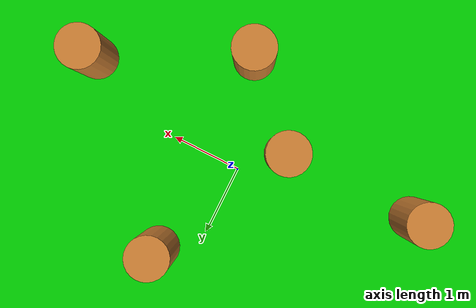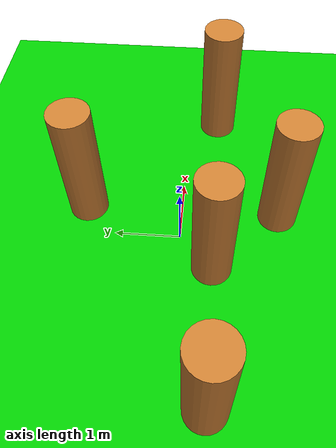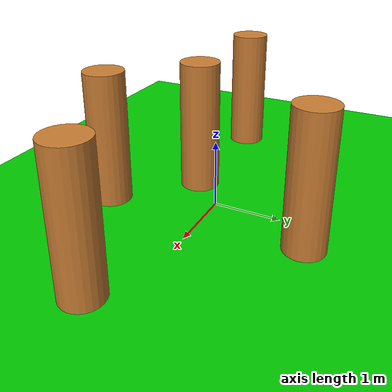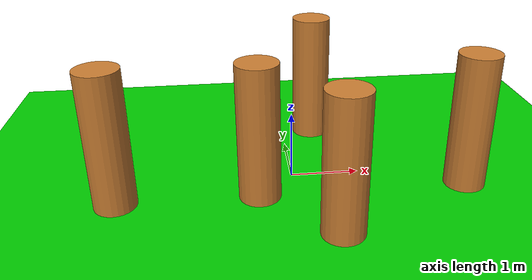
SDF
<sdf version="1.6">
 <world name="dorm">
  <plugin filename="ignition-gazebo-physics-system" name="ignition::gazebo::systems::Physics"/>
  <plugin filename="ignition-gazebo-user-commands-system" name="ignition::gazebo::systems::UserCommands"/>
  <plugin filename="ignition-gazebo-scene-broadcaster-system" name="ignition::gazebo::systems::SceneBroadcaster"/>
  <light name="sun" type="directional">
   <pose>0 0 10 0 -0 0</pose>
   <diffuse>0.8 0.8 0.8 1</diffuse>
   <specular>0.2 0.2 0.2 1</specular>
   <attenuation>
    <range>1000</range>
    <constant>0.9</constant>
    <linear>0.01</linear>
    <quadratic>0.001</quadratic>
   </attenuation>
   <direction>-0.5 0.1 -0.9</direction>
  </light>
  <model name="ground_plane">
   <static>true</static>
   <link name="link">
    <collision name="collision">
     <geometry><plane><normal>0 0 1</normal><size>6 8</size></plane></geometry>
    </collision>
    <visual name="visual">
     <geometry><plane><normal>0 0 1</normal><size>6 8</size></plane></geometry>
     <material>
      <ambient>0.8 0.8 0.8 1</ambient>
      <diffuse>0 0.8 0 1</diffuse>
      <specular>0.8 0.8 0.8 1</specular>
     </material>
    </visual>
   </link>
  </model>
  <model name="pillar1">
   <pose>-2.5 -0.5 1 0 0 0</pose>
   <static>true</static>
   <link name="cylinder_link">
    <inertial>
     <inertia><ixx>0.1458</ixx><ixy>0</ixy><ixz>0</ixz><iyy>0.1458</iyy><iyz>0</iyz><izz>0.125</izz></inertia>
     <mass>1.0</mass>
    </inertial>
    <collision name="cylinder_collision">
     <geometry><cylinder><radius>0.3</radius><length>2.0</length></cylinder></geometry>
    </collision>
    <visual name="cylinder_visual">
     <geometry><cylinder><radius>0.3</radius><length>2.0</length></cylinder></geometry>
     <material><ambient>0 1 0 1</ambient><diffuse>0.8 0.5 0.2 1</diffuse><specular>0 1 0 1</specular></material>
    </visual>
   </link>
  </model>
  <model name="pillar2">
   <pose>-0.5 -0.5 1 0 0 0</pose>
   <static>true</static>
   <link name="cylinder_link">
    <inertial>
     <inertia><ixx>0.1458</ixx><ixy>0</ixy><ixz>0</ixz><iyy>0.1458</iyy><iyz>0</iyz><izz>0.125</izz></inertia>
     <mass>1.0</mass>
    </inertial>
    <collision name="cylinder_collision">
     <geometry><cylinder><radius>0.3</radius><length>2.0</length></cylinder></geometry>
    </collision>
    <visual name="cylinder_visual">
     <geometry><cylinder><radius>0.3</radius><length>2.0</length></cylinder></geometry>
     <material><ambient>0 1 0 1</ambient><diffuse>0.8 0.5 0.2 1</diffuse><specular>0 1 0 1</specular></material>
    </visual>
   </link>
  </model>
  <model name="pillar3">
   <pose>0.5 1.5 1 0 0 0</pose>
   <static>true</static>
   <link name="cylinder_link">
    <inertial>
     <inertia><ixx>0.1458</ixx><ixy>0</ixy><ixz>0</ixz><iyy>0.1458</iyy><iyz>0</iyz><izz>0.125</izz></inertia>
     <mass>1.0</mass>
    </inertial>
    <collision name="cylinder_collision">
     <geometry><cylinder><radius>0.3</radius><length>2.0</length></cylinder></geometry>
    </collision>
    <visual name="cylinder_visual">
     <geometry><cylinder><radius>0.3</radius><length>2.0</length></cylinder></geometry>
     <material><ambient>0 1 0 1</ambient><diffuse>0.8 0.5 0.2 1</diffuse><specular>0 1 0 1</specular></material>
    </visual>
   </link>
  </model>
  <model name="pillar4">
   <pose>0.5 -1.5 1 0 0 0</pose>
   <static>true</static>
   <link name="cylinder_link">
    <inertial>
     <inertia><ixx>0.1458</ixx><ixy>0</ixy><ixz>0</ixz><iyy>0.1458</iyy><iyz>0</iyz><izz>0.125</izz></inertia>
     <mass>1.0</mass>
    </inertial>
    <collision name="cylinder_collision">
     <geometry><cylinder><radius>0.3</radius><length>2.0</length></cylinder></geometry>
    </collision>
    <visual name="cylinder_visual">
     <geometry><cylinder><radius>0.3</radius><length>2.0</length></cylinder></geometry>
     <material><ambient>0 1 0 1</ambient><diffuse>0.8 0.5 0.2 1</diffuse><specular>0 1 0 1</specular></material>
    </visual>
   </link>
  </model>
  <model name="pillar5">
   <pose>2.5 -0.5 1 0 0 0</pose>
   <static>true</static>
   <link name="cylinder_link">
    <inertial>
     <inertia><ixx>0.1458</ixx><ixy>0</ixy><ixz>0</ixz><iyy>0.1458</iyy><iyz>0</iyz><izz>0.125</izz></inertia>
     <mass>1.0</mass>
    </inertial>
    <collision name="cylinder_collision">
     <geometry><cylinder><radius>0.3</radius><length>2.0</length></cylinder></geometry>
    </collision>
    <visual name="cylinder_visual">
     <geometry><cylinder><radius>0.3</radius><length>2.0</length></cylinder></geometry>
     <material><ambient>0 1 0 1</ambient><diffuse>0.8 0.5 0.2 1</diffuse><specular>0 1 0 1</specular></material>
    </visual>
   </link>
  </model>
 </world>
</sdf>
